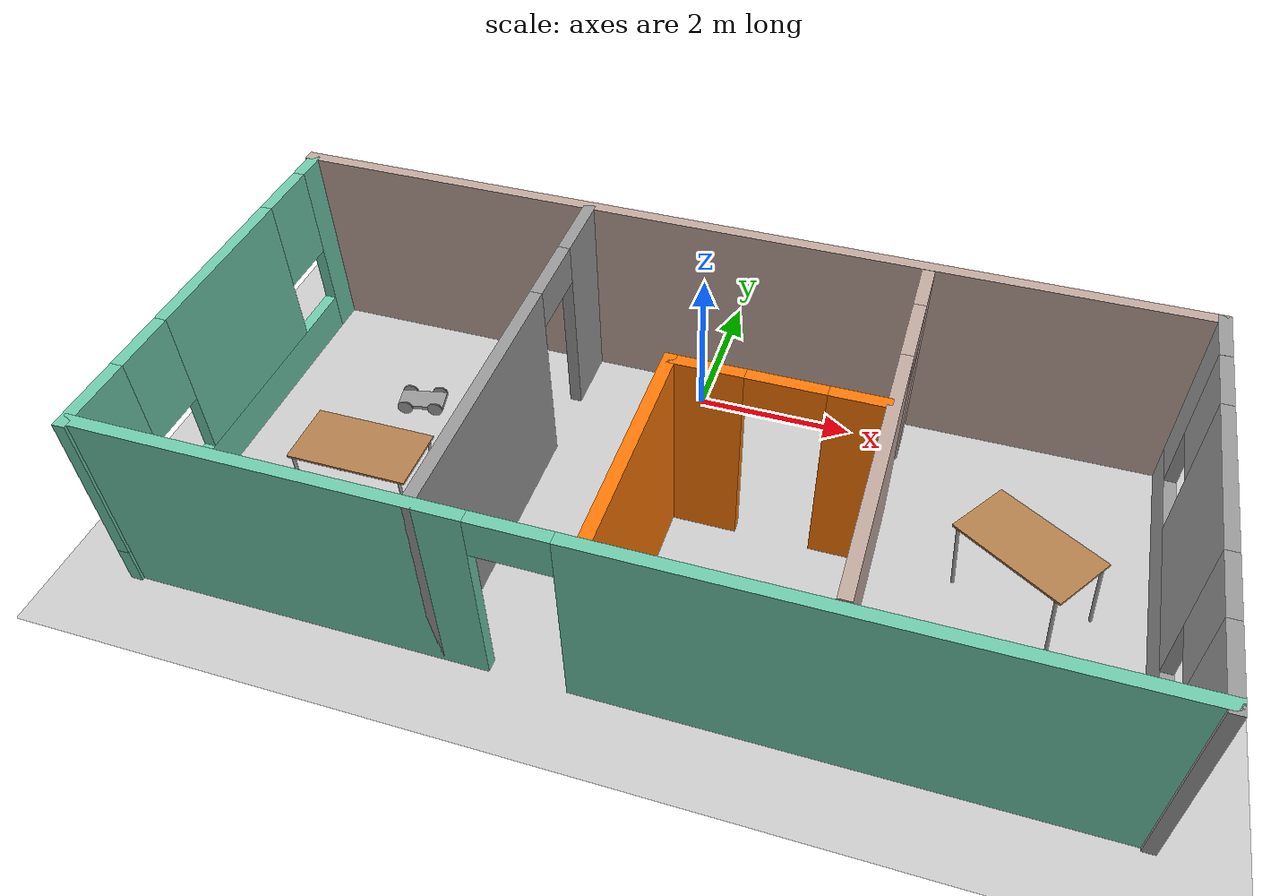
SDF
<sdf version="1.6">
 <world name="default">
  <plugin name="welcome" filename="libwelcome.so"/>
  <light name="sun" type="directional">
   <pose>0 0 10 0 -0 0</pose>
   <diffuse>0.8 0.8 0.8 1</diffuse>
   <specular>0.2 0.2 0.2 1</specular>
   <attenuation>
    <range>1000</range>
    <constant>0.9</constant>
    <linear>0.01</linear>
    <quadratic>0.001</quadratic>
   </attenuation>
   <direction>-0.5 0.1 -0.9</direction>
  </light>
  <model name="ground_plane">
   <static>1</static>
   <link name="link">
    <collision name="collision">
     <geometry><plane><normal>0 0 1</normal><size>100 100</size></plane></geometry>
     <surface><friction><ode><mu>100</mu><mu2>50</mu2></ode></friction></surface>
    </collision>
    <visual name="visual">
     <cast_shadows>0</cast_shadows>
     <geometry><plane><normal>0 0 1</normal><size>100 100</size></plane></geometry>
     <material>
      <script><uri>file://media/materials/scripts/gazebo.material</uri><name>Gazebo/Grey</name></script>
     </material>
    </visual>
   </link>
  </model>
  <gravity>0 0 -9.8</gravity>
  <magnetic_field>6e-06 2.3e-05 -4.2e-05</magnetic_field>
  <atmosphere type="adiabatic"/>
  <physics name="default_physics" default="0" type="ode">
   <max_step_size>0.001</max_step_size>
   <real_time_factor>1</real_time_factor>
   <real_time_update_rate>1000</real_time_update_rate>
  </physics>
  <scene><ambient>0.4 0.4 0.4 1</ambient><background>0.7 0.7 0.7 1</background><shadows>1</shadows></scene>
  <spherical_coordinates>
   <surface_model>EARTH_WGS84</surface_model>
   <latitude_deg>0</latitude_deg>
   <longitude_deg>0</longitude_deg>
   <elevation>0</elevation>
   <heading_deg>0</heading_deg>
  </spherical_coordinates>
  <model name="four_wheeled">
   <link name="link_0">
    <pose>0 0 0.1 0 -0 0</pose>
    <inertial>
     <mass>1</mass>
     <inertia>
      <ixx>0.166667</ixx>
      <ixy>0</ixy>
      <ixz>0</ixz>
      <iyy>0.166667</iyy>
      <iyz>0</iyz>
      <izz>0.166667</izz>
     </inertia>
    </inertial>
    <visual name="visual">
     <geometry><box><size>0.6 0.3 0.05</size></box></geometry>
     <material>
      <lighting>1</lighting>
      <script><uri>file://media/materials/scripts/gazebo.material</uri><name>Gazebo/Grey</name></script>
      <shader type="pixel"><normal_map>__default__</normal_map></shader>
      <ambient>0.3 0.3 0.3 1</ambient>
      <diffuse>0.7 0.7 0.7 1</diffuse>
      <specular>0.01 0.01 0.01 1</specular>
      <emissive>0 0 0 1</emissive>
     </material>
    </visual>
    <collision name="collision">
     <geometry><box><size>0.6 0.3 0.05</size></box></geometry>
     <surface>
      <friction>
       <ode><mu>1</mu><mu2>1</mu2><fdir1>0 0 0</fdir1><slip1>0</slip1><slip2>0</slip2></ode>
       <torsional>
        <coefficient>1</coefficient>
        <patch_radius>0</patch_radius>
        <surface_radius>0</surface_radius>
        <use_patch_radius>1</use_patch_radius>
        <ode><slip>0</slip></ode>
       </torsional>
      </friction>
      <bounce><restitution_coefficient>0</restitution_coefficient><threshold>1e+06</threshold></bounce>
      <contact>
       <collide_without_contact>0</collide_without_contact>
       <collide_without_contact_bitmask>1</collide_without_contact_bitmask>
       <collide_bitmask>1</collide_bitmask>
       <ode>
        <soft_cfm>0</soft_cfm>
        <soft_erp>0.2</soft_erp>
        <kp>1e+13</kp>
        <kd>1</kd>
        <max_vel>0.01</max_vel>
        <min_depth>0</min_depth>
       </ode>
       <bullet>
        <split_impulse>1</split_impulse>
        <split_impulse_penetration_threshold>-0.01</split_impulse_penetration_threshold>
        <soft_cfm>0</soft_cfm>
        <soft_erp>0.2</soft_erp>
        <kp>1e+13</kp>
        <kd>1</kd>
       </bullet>
      </contact>
     </surface>
    </collision>
   </link>
   <link name="link_1">
    <pose>0.2 0.16 0.1 1.5707 -0 0</pose>
    <inertial>
     <mass>1</mass>
     <inertia><ixx>0.145833</ixx><ixy>0</ixy><ixz>0</ixz><iyy>0.145833</iyy><iyz>0</iyz><izz>0.125</izz></inertia>
    </inertial>
    <visual name="visual">
     <geometry><cylinder><radius>0.1</radius><length>0.02</length></cylinder></geometry>
     <material>
      <lighting>1</lighting>
      <script><uri>file://media/materials/scripts/gazebo.material</uri><name>Gazebo/Grey</name></script>
      <shader type="pixel"><normal_map>__default__</normal_map></shader>
      <ambient>0.3 0.3 0.3 1</ambient>
      <diffuse>0.7 0.7 0.7 1</diffuse>
      <specular>0.01 0.01 0.01 1</specular>
      <emissive>0 0 0 1</emissive>
     </material>
    </visual>
    <collision name="collision">
     <geometry><cylinder><radius>0.01</radius><length>0.02</length></cylinder></geometry>
     <surface>
      <friction>
       <ode><mu>1</mu><mu2>1</mu2><fdir1>0 0 0</fdir1><slip1>0</slip1><slip2>0</slip2></ode>
       <torsional>
        <coefficient>1</coefficient>
        <patch_radius>0</patch_radius>
        <surface_radius>0</surface_radius>
        <use_patch_radius>1</use_patch_radius>
        <ode><slip>0</slip></ode>
       </torsional>
      </friction>
      <bounce><restitution_coefficient>0</restitution_coefficient><threshold>1e+06</threshold></bounce>
      <contact>
       <collide_without_contact>0</collide_without_contact>
       <collide_without_contact_bitmask>1</collide_without_contact_bitmask>
       <collide_bitmask>1</collide_bitmask>
       <ode>
        <soft_cfm>0</soft_cfm>
        <soft_erp>0.2</soft_erp>
        <kp>1e+13</kp>
        <kd>1</kd>
        <max_vel>0.01</max_vel>
        <min_depth>0</min_depth>
       </ode>
       <bullet>
        <split_impulse>1</split_impulse>
        <split_impulse_penetration_threshold>-0.01</split_impulse_penetration_threshold>
        <soft_cfm>0</soft_cfm>
        <soft_erp>0.2</soft_erp>
        <kp>1e+13</kp>
        <kd>1</kd>
       </bullet>
      </contact>
     </surface>
    </collision>
   </link>
   <link name="link_2">
    <pose>0.2 -0.16 0.1 1.5707 -0 0</pose>
    <inertial>
     <mass>1</mass>
     <inertia><ixx>0.145833</ixx><ixy>0</ixy><ixz>0</ixz><iyy>0.145833</iyy><iyz>0</iyz><izz>0.125</izz></inertia>
    </inertial>
    <visual name="visual">
     <geometry><cylinder><radius>0.1</radius><length>0.02</length></cylinder></geometry>
     <material>
      <lighting>1</lighting>
      <script><uri>file://media/materials/scripts/gazebo.material</uri><name>Gazebo/Grey</name></script>
      <shader type="pixel"><normal_map>__default__</normal_map></shader>
      <ambient>0.3 0.3 0.3 1</ambient>
      <diffuse>0.7 0.7 0.7 1</diffuse>
      <specular>0.01 0.01 0.01 1</specular>
      <emissive>0 0 0 1</emissive>
     </material>
    </visual>
    <collision name="collision">
     <geometry><cylinder><radius>0.1</radius><length>0.02</length></cylinder></geometry>
     <surface>
      <friction>
       <ode><mu>1</mu><mu2>1</mu2><fdir1>0 0 0</fdir1><slip1>0</slip1><slip2>0</slip2></ode>
       <torsional>
        <coefficient>1</coefficient>
        <patch_radius>0</patch_radius>
        <surface_radius>0</surface_radius>
        <use_patch_radius>1</use_patch_radius>
        <ode><slip>0</slip></ode>
       </torsional>
      </friction>
      <bounce><restitution_coefficient>0</restitution_coefficient><threshold>1e+06</threshold></bounce>
      <contact>
       <collide_without_contact>0</collide_without_contact>
       <collide_without_contact_bitmask>1</collide_without_contact_bitmask>
       <collide_bitmask>1</collide_bitmask>
       <ode>
        <soft_cfm>0</soft_cfm>
        <soft_erp>0.2</soft_erp>
        <kp>1e+13</kp>
        <kd>1</kd>
        <max_vel>0.01</max_vel>
        <min_depth>0</min_depth>
       </ode>
       <bullet>
        <split_impulse>1</split_impulse>
        <split_impulse_penetration_threshold>-0.01</split_impulse_penetration_threshold>
        <soft_cfm>0</soft_cfm>
        <soft_erp>0.2</soft_erp>
        <kp>1e+13</kp>
        <kd>1</kd>
       </bullet>
      </contact>
     </surface>
    </collision>
   </link>
   <link name="link_3">
    <pose>-0.2 0.16 0.1 1.5707 -0 0</pose>
    <inertial>
     <mass>1</mass>
     <inertia><ixx>0.145833</ixx><ixy>0</ixy><ixz>0</ixz><iyy>0.145833</iyy><iyz>0</iyz><izz>0.125</izz></inertia>
    </inertial>
    <visual name="visual">
     <geometry><cylinder><radius>0.1</radius><length>0.02</length></cylinder></geometry>
     <material>
      <lighting>1</lighting>
      <script><uri>file://media/materials/scripts/gazebo.material</uri><name>Gazebo/Grey</name></script>
      <shader type="pixel"><normal_map>__default__</normal_map></shader>
      <ambient>0.3 0.3 0.3 1</ambient>
      <diffuse>0.7 0.7 0.7 1</diffuse>
      <specular>0.01 0.01 0.01 1</specular>
      <emissive>0 0 0 1</emissive>
     </material>
    </visual>
    <collision name="collision">
     <geometry><cylinder><radius>0.1</radius><length>0.02</length></cylinder></geometry>
     <surface>
      <friction>
       <ode><mu>1</mu><mu2>1</mu2><fdir1>0 0 0</fdir1><slip1>0</slip1><slip2>0</slip2></ode>
       <torsional>
        <coefficient>1</coefficient>
        <patch_radius>0</patch_radius>
        <surface_radius>0</surface_radius>
        <use_patch_radius>1</use_patch_radius>
        <ode><slip>0</slip></ode>
       </torsional>
      </friction>
      <bounce><restitution_coefficient>0</restitution_coefficient><threshold>1e+06</threshold></bounce>
      <contact>
       <collide_without_contact>0</collide_without_contact>
       <collide_without_contact_bitmask>1</collide_without_contact_bitmask>
       <collide_bitmask>1</collide_bitmask>
       <ode>
        <soft_cfm>0</soft_cfm>
        <soft_erp>0.2</soft_erp>
        <kp>1e+13</kp>
        <kd>1</kd>
        <max_vel>0.01</max_vel>
        <min_depth>0</min_depth>
       </ode>
       <bullet>
        <split_impulse>1</split_impulse>
        <split_impulse_penetration_threshold>-0.01</split_impulse_penetration_threshold>
        <soft_cfm>0</soft_cfm>
        <soft_erp>0.2</soft_erp>
        <kp>1e+13</kp>
        <kd>1</kd>
       </bullet>
      </contact>
     </surface>
    </collision>
   </link>
   <link name="link_4">
    <pose>-0.2 -0.16 0.1 1.5707 -0 0</pose>
    <inertial>
     <mass>1</mass>
     <inertia><ixx>0.145833</ixx><ixy>0</ixy><ixz>0</ixz><iyy>0.145833</iyy><iyz>0</iyz><izz>0.125</izz></inertia>
    </inertial>
    <visual name="visual">
     <geometry><cylinder><radius>0.1</radius><length>0.02</length></cylinder></geometry>
     <material>
      <lighting>1</lighting>
      <script><uri>file://media/materials/scripts/gazebo.material</uri><name>Gazebo/Grey</name></script>
      <shader type="pixel"><normal_map>__default__</normal_map></shader>
      <ambient>0.3 0.3 0.3 1</ambient>
      <diffuse>0.7 0.7 0.7 1</diffuse>
      <specular>0.01 0.01 0.01 1</specular>
      <emissive>0 0 0 1</emissive>
     </material>
    </visual>
    <collision name="collision">
     <geometry><cylinder><radius>0.1</radius><length>0.02</length></cylinder></geometry>
     <surface>
      <friction>
       <ode><mu>1</mu><mu2>1</mu2><fdir1>0 0 0</fdir1><slip1>0</slip1><slip2>0</slip2></ode>
       <torsional>
        <coefficient>1</coefficient>
        <patch_radius>0</patch_radius>
        <surface_radius>0</surface_radius>
        <use_patch_radius>1</use_patch_radius>
        <ode><slip>0</slip></ode>
       </torsional>
      </friction>
      <bounce><restitution_coefficient>0</restitution_coefficient><threshold>1e+06</threshold></bounce>
      <contact>
       <collide_without_contact>0</collide_without_contact>
       <collide_without_contact_bitmask>1</collide_without_contact_bitmask>
       <collide_bitmask>1</collide_bitmask>
       <ode>
        <soft_cfm>0</soft_cfm>
        <soft_erp>0.2</soft_erp>
        <kp>1e+13</kp>
        <kd>1</kd>
        <max_vel>0.01</max_vel>
        <min_depth>0</min_depth>
       </ode>
       <bullet>
        <split_impulse>1</split_impulse>
        <split_impulse_penetration_threshold>-0.01</split_impulse_penetration_threshold>
        <soft_cfm>0</soft_cfm>
        <soft_erp>0.2</soft_erp>
        <kp>1e+13</kp>
        <kd>1</kd>
       </bullet>
      </contact>
     </surface>
    </collision>
   </link>
   <joint name="link_0_JOINT_2" type="revolute">
    <parent>link_0</parent>
    <child>link_3</child>
    <axis>
     <xyz>0 0 1</xyz>
     <use_parent_model_frame>0</use_parent_model_frame>
     <limit>
      <lower>-1.79769e+308</lower>
      <upper>1.79769e+308</upper>
      <effort>-1</effort>
      <velocity>-1</velocity>
     </limit>
     <dynamics>
      <spring_reference>0</spring_reference>
      <spring_stiffness>0</spring_stiffness>
      <damping>0</damping>
     </dynamics>
    </axis>
    <physics>
     <ode><limit><cfm>0</cfm><erp>0.2</erp></limit><suspension><cfm>0</cfm><erp>0.2</erp></suspension></ode>
    </physics>
   </joint>
   <joint name="link_0_JOINT_3" type="revolute">
    <parent>link_0</parent>
    <child>link_2</child>
    <axis>
     <xyz>0 0 1</xyz>
     <use_parent_model_frame>0</use_parent_model_frame>
     <limit>
      <lower>-1.79769e+308</lower>
      <upper>1.79769e+308</upper>
      <effort>-1</effort>
      <velocity>-1</velocity>
     </limit>
     <dynamics>
      <spring_reference>0</spring_reference>
      <spring_stiffness>0</spring_stiffness>
      <damping>0</damping>
     </dynamics>
    </axis>
    <physics>
     <ode><limit><cfm>0</cfm><erp>0.2</erp></limit><suspension><cfm>0</cfm><erp>0.2</erp></suspension></ode>
    </physics>
   </joint>
   <joint name="link_0_JOINT_4" type="revolute">
    <parent>link_0</parent>
    <child>link_1</child>
    <axis>
     <xyz>0 0 1</xyz>
     <use_parent_model_frame>0</use_parent_model_frame>
     <limit>
      <lower>-1.79769e+308</lower>
      <upper>1.79769e+308</upper>
      <effort>-1</effort>
      <velocity>-1</velocity>
     </limit>
     <dynamics>
      <spring_reference>0</spring_reference>
      <spring_stiffness>0</spring_stiffness>
      <damping>0</damping>
     </dynamics>
    </axis>
    <physics>
     <ode><limit><cfm>0</cfm><erp>0.2</erp></limit><suspension><cfm>0</cfm><erp>0.2</erp></suspension></ode>
    </physics>
   </joint>
   <joint name="link_0_JOINT_1" type="revolute">
    <parent>link_0</parent>
    <child>link_4</child>
    <axis>
     <xyz>0 0 1</xyz>
     <use_parent_model_frame>0</use_parent_model_frame>
     <limit>
      <lower>-1.79769e+308</lower>
      <upper>1.79769e+308</upper>
      <effort>-1</effort>
      <velocity>-1</velocity>
     </limit>
     <dynamics>
      <spring_reference>0</spring_reference>
      <spring_stiffness>0</spring_stiffness>
      <damping>0</damping>
      <friction>0</friction>
     </dynamics>
    </axis>
    <physics>
     <ode><limit><cfm>0</cfm><erp>0.2</erp></limit><suspension><cfm>0</cfm><erp>0.2</erp></suspension></ode>
    </physics>
   </joint>
   <static>0</static>
   <pose>-0.005123 -0.012088 3e-06 -6.9e-05 6.2e-05 0.216643</pose>
  </model>
  <model name="flat">
   <pose>0.202888 -2.15418 0 0 -0 0</pose>
   <link name="Wall_0">
    <pose>0.01749 -2.56749 0 0 -0 0</pose>
    <visual name="Wall_0_Visual_0">
     <pose>-3.4975 0 1.25 0 -0 0</pose>
     <geometry><box><size>4.505 0.15 2.5</size></box></geometry>
     <material>
      <script><uri>file://media/materials/scripts/gazebo.material</uri><name>Gazebo/Grey</name></script>
      <ambient>0.435294 0.796078 0.67451 1</ambient>
     </material>
     <meta><layer>0</layer></meta>
    </visual>
    <collision name="Wall_0_Collision_0">
     <geometry><box><size>4.505 0.15 2.5</size></box></geometry>
     <pose>-3.4975 0 1.25 0 -0 0</pose>
    </collision>
    <visual name="Wall_0_Visual_1">
     <pose>2.7025 0 1.25 0 -0 0</pose>
     <geometry><box><size>6.095 0.15 2.5</size></box></geometry>
     <material>
      <script><uri>file://media/materials/scripts/gazebo.material</uri><name>Gazebo/Grey</name></script>
      <ambient>0.435294 0.796078 0.67451 1</ambient>
     </material>
     <meta><layer>0</layer></meta>
    </visual>
    <collision name="Wall_0_Collision_1">
     <geometry><box><size>6.095 0.15 2.5</size></box></geometry>
     <pose>2.7025 0 1.25 0 -0 0</pose>
    </collision>
    <visual name="Wall_0_Visual_2">
     <pose>-0.795 0 2.25 0 -0 0</pose>
     <geometry><box><size>0.9 0.15 0.5</size></box></geometry>
     <material>
      <script><uri>file://media/materials/scripts/gazebo.material</uri><name>Gazebo/Grey</name></script>
      <ambient>0.435294 0.796078 0.67451 1</ambient>
     </material>
     <meta><layer>0</layer></meta>
    </visual>
    <collision name="Wall_0_Collision_2">
     <geometry><box><size>0.9 0.15 0.5</size></box></geometry>
     <pose>-0.795 0 2.25 0 -0 0</pose>
    </collision>
   </link>
   <link name="Wall_1">
    <pose>5.69249 0 0 0 -0 1.5708</pose>
    <visual name="Wall_1_Visual_0">
     <pose>-2.1766 0 1.25 0 -0 0</pose>
     <geometry><box><size>1.00175 0.15 2.5</size></box></geometry>
     <material>
      <script><uri>file://media/materials/scripts/gazebo.material</uri><name>Gazebo/Grey</name></script>
      <ambient>1 1 1 1</ambient>
     </material>
     <meta><layer>0</layer></meta>
    </visual>
    <collision name="Wall_1_Collision_0">
     <geometry><box><size>1.00175 0.15 2.5</size></box></geometry>
     <pose>-2.1766 0 1.25 0 -0 0</pose>
    </collision>
    <visual name="Wall_1_Visual_1">
     <pose>0.500875 0 0.25 0 -0 0</pose>
     <geometry><box><size>4.35319 0.15 0.5</size></box></geometry>
     <material>
      <script><uri>file://media/materials/scripts/gazebo.material</uri><name>Gazebo/Grey</name></script>
      <ambient>1 1 1 1</ambient>
     </material>
     <meta><layer>0</layer></meta>
    </visual>
    <collision name="Wall_1_Collision_1">
     <geometry><box><size>4.35319 0.15 0.5</size></box></geometry>
     <pose>0.500875 0 0.25 0 -0 0</pose>
    </collision>
    <visual name="Wall_1_Visual_2">
     <pose>0.142881 0 1.5 0 -0 0</pose>
     <geometry><box><size>2.0372 0.15 2</size></box></geometry>
     <material>
      <script><uri>file://media/materials/scripts/gazebo.material</uri><name>Gazebo/Grey</name></script>
      <ambient>1 1 1 1</ambient>
     </material>
     <meta><layer>0</layer></meta>
    </visual>
    <collision name="Wall_1_Collision_2">
     <geometry><box><size>2.0372 0.15 2</size></box></geometry>
     <pose>0.142881 0 1.5 0 -0 0</pose>
    </collision>
    <visual name="Wall_1_Visual_3">
     <pose>2.31948 0 1.5 0 -0 0</pose>
     <geometry><box><size>0.715988 0.15 2</size></box></geometry>
     <material>
      <script><uri>file://media/materials/scripts/gazebo.material</uri><name>Gazebo/Grey</name></script>
      <ambient>1 1 1 1</ambient>
     </material>
     <meta><layer>0</layer></meta>
    </visual>
    <collision name="Wall_1_Collision_3">
     <geometry><box><size>0.715988 0.15 2</size></box></geometry>
     <pose>2.31948 0 1.5 0 -0 0</pose>
    </collision>
    <visual name="Wall_1_Visual_4">
     <pose>-1.27572 0 1.9 0 -0 0</pose>
     <geometry><box><size>0.8 0.15 1.2</size></box></geometry>
     <material>
      <script><uri>file://media/materials/scripts/gazebo.material</uri><name>Gazebo/Grey</name></script>
      <ambient>1 1 1 1</ambient>
     </material>
     <meta><layer>0</layer></meta>
    </visual>
    <collision name="Wall_1_Collision_4">
     <geometry><box><size>0.8 0.15 1.2</size></box></geometry>
     <pose>-1.27572 0 1.9 0 -0 0</pose>
    </collision>
    <visual name="Wall_1_Visual_5">
     <pose>1.56148 0 1.9 0 -0 0</pose>
     <geometry><box><size>0.8 0.15 1.2</size></box></geometry>
     <material>
      <script><uri>file://media/materials/scripts/gazebo.material</uri><name>Gazebo/Grey</name></script>
      <ambient>1 1 1 1</ambient>
     </material>
     <meta><layer>0</layer></meta>
    </visual>
    <collision name="Wall_1_Collision_5">
     <geometry><box><size>0.8 0.15 1.2</size></box></geometry>
     <pose>1.56148 0 1.9 0 -0 0</pose>
    </collision>
   </link>
   <link name="Wall_12">
    <collision name="Wall_12_Collision">
     <geometry><box><size>2.75 0.15 2.5</size></box></geometry>
     <pose>0 0 1.25 0 -0 0</pose>
    </collision>
    <visual name="Wall_12_Visual">
     <pose>0 0 1.25 0 -0 0</pose>
     <geometry><box><size>2.75 0.15 2.5</size></box></geometry>
     <material>
      <script><uri>file://media/materials/scripts/gazebo.material</uri><name>Gazebo/Grey</name></script>
      <ambient>0.996078 0.47451 0.0196078 1</ambient>
     </material>
     <meta><layer>0</layer></meta>
    </visual>
    <pose>-0.037888 -1.14582 0 0 0 -1.5708</pose>
   </link>
   <link name="Wall_14">
    <pose>1.13711 0.154179 0 0 -0 0</pose>
    <visual name="Wall_14_Visual_0">
     <pose>-0.788452 0 1.25 0 -0 0</pose>
     <geometry><box><size>0.923095 0.15 2.5</size></box></geometry>
     <material>
      <script><uri>file://media/materials/scripts/gazebo.material</uri><name>Gazebo/Grey</name></script>
      <ambient>0.996078 0.47451 0.0196078 1</ambient>
     </material>
     <meta><layer>0</layer></meta>
    </visual>
    <collision name="Wall_14_Collision_0">
     <geometry><box><size>0.923095 0.15 2.5</size></box></geometry>
     <pose>-0.788452 0 1.25 0 -0 0</pose>
    </collision>
    <visual name="Wall_14_Visual_1">
     <pose>0.911548 0 1.25 0 -0 0</pose>
     <geometry><box><size>0.676905 0.15 2.5</size></box></geometry>
     <material>
      <script><uri>file://media/materials/scripts/gazebo.material</uri><name>Gazebo/Grey</name></script>
      <ambient>0.996078 0.47451 0.0196078 1</ambient>
     </material>
     <meta><layer>0</layer></meta>
    </visual>
    <collision name="Wall_14_Collision_1">
     <geometry><box><size>0.676905 0.15 2.5</size></box></geometry>
     <pose>0.911548 0 1.25 0 -0 0</pose>
    </collision>
    <visual name="Wall_14_Visual_2">
     <pose>0.123095 0 2.25 0 -0 0</pose>
     <geometry><box><size>0.9 0.15 0.5</size></box></geometry>
     <material>
      <script><uri>file://media/materials/scripts/gazebo.material</uri><name>Gazebo/Grey</name></script>
      <ambient>0.996078 0.47451 0.0196078 1</ambient>
     </material>
     <meta><layer>0</layer></meta>
    </visual>
    <collision name="Wall_14_Collision_2">
     <geometry><box><size>0.9 0.15 0.5</size></box></geometry>
     <pose>0.123095 0 2.25 0 -0 0</pose>
    </collision>
   </link>
   <link name="Wall_3">
    <collision name="Wall_3_Collision">
     <geometry><box><size>11.5 0.15 2.5</size></box></geometry>
     <pose>0 0 1.25 0 -0 0</pose>
    </collision>
    <visual name="Wall_3_Visual">
     <pose>0 0 1.25 0 -0 0</pose>
     <geometry><box><size>11.5 0.15 2.5</size></box></geometry>
     <material>
      <script><uri>file://media/materials/scripts/gazebo.material</uri><name>Gazebo/Grey</name></script>
      <ambient>0.760784 0.662745 0.627451 1</ambient>
     </material>
     <meta><layer>0</layer></meta>
    </visual>
    <pose>-0.01749 2.60247 0 0 -0 3.14159</pose>
   </link>
   <link name="Wall_4">
    <pose>-5.65751 0 0 0 0 -1.5708</pose>
    <visual name="Wall_4_Visual_0">
     <pose>-2.42153 0 1.25 0 -0 0</pose>
     <geometry><box><size>0.511873 0.15 2.5</size></box></geometry>
     <material>
      <script><uri>file://media/materials/scripts/gazebo.material</uri><name>Gazebo/Grey</name></script>
      <ambient>0.435294 0.796078 0.67451 1</ambient>
     </material>
     <meta><layer>0</layer></meta>
    </visual>
    <collision name="Wall_4_Collision_0">
     <geometry><box><size>0.511873 0.15 2.5</size></box></geometry>
     <pose>-2.42153 0 1.25 0 -0 0</pose>
    </collision>
    <visual name="Wall_4_Visual_1">
     <pose>0.255936 0 0.25 0 -0 0</pose>
     <geometry><box><size>4.84307 0.15 0.5</size></box></geometry>
     <material>
      <script><uri>file://media/materials/scripts/gazebo.material</uri><name>Gazebo/Grey</name></script>
      <ambient>0.435294 0.796078 0.67451 1</ambient>
     </material>
     <meta><layer>0</layer></meta>
    </visual>
    <collision name="Wall_4_Collision_1">
     <geometry><box><size>4.84307 0.15 0.5</size></box></geometry>
     <pose>0.255936 0 0.25 0 -0 0</pose>
    </collision>
    <visual name="Wall_4_Visual_2">
     <pose>-0.234732 0 1.5 0 -0 0</pose>
     <geometry><box><size>2.26173 0.15 2</size></box></geometry>
     <material>
      <script><uri>file://media/materials/scripts/gazebo.material</uri><name>Gazebo/Grey</name></script>
      <ambient>0.435294 0.796078 0.67451 1</ambient>
     </material>
     <meta><layer>0</layer></meta>
    </visual>
    <collision name="Wall_4_Collision_2">
     <geometry><box><size>2.26173 0.15 2</size></box></geometry>
     <pose>-0.234732 0 1.5 0 -0 0</pose>
    </collision>
    <visual name="Wall_4_Visual_3">
     <pose>2.1868 0 1.5 0 -0 0</pose>
     <geometry><box><size>0.981338 0.15 2</size></box></geometry>
     <material>
      <script><uri>file://media/materials/scripts/gazebo.material</uri><name>Gazebo/Grey</name></script>
      <ambient>0.435294 0.796078 0.67451 1</ambient>
     </material>
     <meta><layer>0</layer></meta>
    </visual>
    <collision name="Wall_4_Collision_3">
     <geometry><box><size>0.981338 0.15 2</size></box></geometry>
     <pose>2.1868 0 1.5 0 -0 0</pose>
    </collision>
    <visual name="Wall_4_Visual_4">
     <pose>-1.7656 0 1.9 0 -0 0</pose>
     <geometry><box><size>0.8 0.15 1.2</size></box></geometry>
     <material>
      <script><uri>file://media/materials/scripts/gazebo.material</uri><name>Gazebo/Grey</name></script>
      <ambient>0.435294 0.796078 0.67451 1</ambient>
     </material>
     <meta><layer>0</layer></meta>
    </visual>
    <collision name="Wall_4_Collision_4">
     <geometry><box><size>0.8 0.15 1.2</size></box></geometry>
     <pose>-1.7656 0 1.9 0 -0 0</pose>
    </collision>
    <visual name="Wall_4_Visual_5">
     <pose>1.29613 0 1.9 0 -0 0</pose>
     <geometry><box><size>0.8 0.15 1.2</size></box></geometry>
     <material>
      <script><uri>file://media/materials/scripts/gazebo.material</uri><name>Gazebo/Grey</name></script>
      <ambient>0.435294 0.796078 0.67451 1</ambient>
     </material>
     <meta><layer>0</layer></meta>
    </visual>
    <collision name="Wall_4_Collision_5">
     <geometry><box><size>0.8 0.15 1.2</size></box></geometry>
     <pose>1.29613 0 1.9 0 -0 0</pose>
    </collision>
   </link>
   <link name="Wall_6">
    <pose>-1.82739 -0.01749 0 0 0 -1.5708</pose>
    <visual name="Wall_6_Visual_0">
     <pose>-2.1625 0 1.25 0 -0 0</pose>
     <geometry><box><size>0.925 0.15 2.5</size></box></geometry>
     <material>
      <script><uri>file://media/materials/scripts/gazebo.material</uri><name>Gazebo/Grey</name></script>
      <ambient>1 1 1 1</ambient>
     </material>
     <meta><layer>0</layer></meta>
    </visual>
    <collision name="Wall_6_Collision_0">
     <geometry><box><size>0.925 0.15 2.5</size></box></geometry>
     <pose>-2.1625 0 1.25 0 -0 0</pose>
    </collision>
    <visual name="Wall_6_Visual_1">
     <pose>0.9125 0 1.25 0 -0 0</pose>
     <geometry><box><size>3.425 0.15 2.5</size></box></geometry>
     <material>
      <script><uri>file://media/materials/scripts/gazebo.material</uri><name>Gazebo/Grey</name></script>
      <ambient>1 1 1 1</ambient>
     </material>
     <meta><layer>0</layer></meta>
    </visual>
    <collision name="Wall_6_Collision_1">
     <geometry><box><size>3.425 0.15 2.5</size></box></geometry>
     <pose>0.9125 0 1.25 0 -0 0</pose>
    </collision>
    <visual name="Wall_6_Visual_2">
     <pose>-1.25 0 2.25 0 -0 0</pose>
     <geometry><box><size>0.9 0.15 0.5</size></box></geometry>
     <material>
      <script><uri>file://media/materials/scripts/gazebo.material</uri><name>Gazebo/Grey</name></script>
      <ambient>1 1 1 1</ambient>
     </material>
     <meta><layer>0</layer></meta>
    </visual>
    <collision name="Wall_6_Collision_2">
     <geometry><box><size>0.9 0.15 0.5</size></box></geometry>
     <pose>-1.25 0 2.25 0 -0 0</pose>
    </collision>
   </link>
   <link name="Wall_9">
    <pose>2.40233 0.02249 0 0 0 -1.5708</pose>
    <visual name="Wall_9_Visual_0">
     <pose>-2.1675 0 1.25 0 -0 0</pose>
     <geometry><box><size>0.665 0.15 2.5</size></box></geometry>
     <material>
      <script><uri>file://media/materials/scripts/gazebo.material</uri><name>Gazebo/Grey</name></script>
      <ambient>0.760784 0.662745 0.627451 1</ambient>
     </material>
     <meta><layer>0</layer></meta>
    </visual>
    <collision name="Wall_9_Collision_0">
     <geometry><box><size>0.665 0.15 2.5</size></box></geometry>
     <pose>-2.1675 0 1.25 0 -0 0</pose>
    </collision>
    <visual name="Wall_9_Visual_1">
     <pose>0.7825 0 1.25 0 -0 0</pose>
     <geometry><box><size>3.435 0.15 2.5</size></box></geometry>
     <material>
      <script><uri>file://media/materials/scripts/gazebo.material</uri><name>Gazebo/Grey</name></script>
      <ambient>0.760784 0.662745 0.627451 1</ambient>
     </material>
     <meta><layer>0</layer></meta>
    </visual>
    <collision name="Wall_9_Collision_1">
     <geometry><box><size>3.435 0.15 2.5</size></box></geometry>
     <pose>0.7825 0 1.25 0 -0 0</pose>
    </collision>
    <visual name="Wall_9_Visual_2">
     <pose>-1.385 0 2.25 0 -0 0</pose>
     <geometry><box><size>0.9 0.15 0.5</size></box></geometry>
     <material>
      <script><uri>file://media/materials/scripts/gazebo.material</uri><name>Gazebo/Grey</name></script>
      <ambient>0.760784 0.662745 0.627451 1</ambient>
     </material>
     <meta><layer>0</layer></meta>
    </visual>
    <collision name="Wall_9_Collision_2">
     <geometry><box><size>0.9 0.15 0.5</size></box></geometry>
     <pose>-1.385 0 2.25 0 -0 0</pose>
    </collision>
   </link>
   <static>1</static>
  </model>
  <model name="four_wheeled_0">
   <link name="link_0">
    <pose>0 0 0.1 0 -0 0</pose>
    <inertial>
     <mass>1</mass>
     <inertia>
      <ixx>0.166667</ixx>
      <ixy>0</ixy>
      <ixz>0</ixz>
      <iyy>0.166667</iyy>
      <iyz>0</iyz>
      <izz>0.166667</izz>
     </inertia>
    </inertial>
    <visual name="visual">
     <geometry><box><size>0.6 0.3 0.05</size></box></geometry>
     <material>
      <lighting>1</lighting>
      <script><uri>file://media/materials/scripts/gazebo.material</uri><name>Gazebo/Grey</name></script>
      <shader type="pixel"><normal_map>__default__</normal_map></shader>
      <ambient>0.3 0.3 0.3 1</ambient>
      <diffuse>0.7 0.7 0.7 1</diffuse>
      <specular>0.01 0.01 0.01 1</specular>
      <emissive>0 0 0 1</emissive>
     </material>
    </visual>
    <collision name="collision">
     <geometry><box><size>0.6 0.3 0.05</size></box></geometry>
     <surface>
      <friction>
       <ode><mu>1</mu><mu2>1</mu2><fdir1>0 0 0</fdir1><slip1>0</slip1><slip2>0</slip2></ode>
       <torsional>
        <coefficient>1</coefficient>
        <patch_radius>0</patch_radius>
        <surface_radius>0</surface_radius>
        <use_patch_radius>1</use_patch_radius>
        <ode><slip>0</slip></ode>
       </torsional>
      </friction>
      <bounce><restitution_coefficient>0</restitution_coefficient><threshold>1e+06</threshold></bounce>
      <contact>
       <collide_without_contact>0</collide_without_contact>
       <collide_without_contact_bitmask>1</collide_without_contact_bitmask>
       <collide_bitmask>1</collide_bitmask>
       <ode>
        <soft_cfm>0</soft_cfm>
        <soft_erp>0.2</soft_erp>
        <kp>1e+13</kp>
        <kd>1</kd>
        <max_vel>0.01</max_vel>
        <min_depth>0</min_depth>
       </ode>
       <bullet>
        <split_impulse>1</split_impulse>
        <split_impulse_penetration_threshold>-0.01</split_impulse_penetration_threshold>
        <soft_cfm>0</soft_cfm>
        <soft_erp>0.2</soft_erp>
        <kp>1e+13</kp>
        <kd>1</kd>
       </bullet>
      </contact>
     </surface>
    </collision>
   </link>
   <link name="link_1">
    <pose>0.2 0.16 0.1 1.5707 -0 0</pose>
    <inertial>
     <mass>1</mass>
     <inertia><ixx>0.145833</ixx><ixy>0</ixy><ixz>0</ixz><iyy>0.145833</iyy><iyz>0</iyz><izz>0.125</izz></inertia>
    </inertial>
    <visual name="visual">
     <geometry><cylinder><radius>0.1</radius><length>0.02</length></cylinder></geometry>
     <material>
      <lighting>1</lighting>
      <script><uri>file://media/materials/scripts/gazebo.material</uri><name>Gazebo/Grey</name></script>
      <shader type="pixel"><normal_map>__default__</normal_map></shader>
      <ambient>0.3 0.3 0.3 1</ambient>
      <diffuse>0.7 0.7 0.7 1</diffuse>
      <specular>0.01 0.01 0.01 1</specular>
      <emissive>0 0 0 1</emissive>
     </material>
    </visual>
    <collision name="collision">
     <geometry><cylinder><radius>0.01</radius><length>0.02</length></cylinder></geometry>
     <surface>
      <friction>
       <ode><mu>1</mu><mu2>1</mu2><fdir1>0 0 0</fdir1><slip1>0</slip1><slip2>0</slip2></ode>
       <torsional>
        <coefficient>1</coefficient>
        <patch_radius>0</patch_radius>
        <surface_radius>0</surface_radius>
        <use_patch_radius>1</use_patch_radius>
        <ode><slip>0</slip></ode>
       </torsional>
      </friction>
      <bounce><restitution_coefficient>0</restitution_coefficient><threshold>1e+06</threshold></bounce>
      <contact>
       <collide_without_contact>0</collide_without_contact>
       <collide_without_contact_bitmask>1</collide_without_contact_bitmask>
       <collide_bitmask>1</collide_bitmask>
       <ode>
        <soft_cfm>0</soft_cfm>
        <soft_erp>0.2</soft_erp>
        <kp>1e+13</kp>
        <kd>1</kd>
        <max_vel>0.01</max_vel>
        <min_depth>0</min_depth>
       </ode>
       <bullet>
        <split_impulse>1</split_impulse>
        <split_impulse_penetration_threshold>-0.01</split_impulse_penetration_threshold>
        <soft_cfm>0</soft_cfm>
        <soft_erp>0.2</soft_erp>
        <kp>1e+13</kp>
        <kd>1</kd>
       </bullet>
      </contact>
     </surface>
    </collision>
   </link>
   <link name="link_2">
    <pose>0.2 -0.16 0.1 1.5707 -0 0</pose>
    <inertial>
     <mass>1</mass>
     <inertia><ixx>0.145833</ixx><ixy>0</ixy><ixz>0</ixz><iyy>0.145833</iyy><iyz>0</iyz><izz>0.125</izz></inertia>
    </inertial>
    <visual name="visual">
     <geometry><cylinder><radius>0.1</radius><length>0.02</length></cylinder></geometry>
     <material>
      <lighting>1</lighting>
      <script><uri>file://media/materials/scripts/gazebo.material</uri><name>Gazebo/Grey</name></script>
      <shader type="pixel"><normal_map>__default__</normal_map></shader>
      <ambient>0.3 0.3 0.3 1</ambient>
      <diffuse>0.7 0.7 0.7 1</diffuse>
      <specular>0.01 0.01 0.01 1</specular>
      <emissive>0 0 0 1</emissive>
     </material>
    </visual>
    <collision name="collision">
     <geometry><cylinder><radius>0.1</radius><length>0.02</length></cylinder></geometry>
     <surface>
      <friction>
       <ode><mu>1</mu><mu2>1</mu2><fdir1>0 0 0</fdir1><slip1>0</slip1><slip2>0</slip2></ode>
       <torsional>
        <coefficient>1</coefficient>
        <patch_radius>0</patch_radius>
        <surface_radius>0</surface_radius>
        <use_patch_radius>1</use_patch_radius>
        <ode><slip>0</slip></ode>
       </torsional>
      </friction>
      <bounce><restitution_coefficient>0</restitution_coefficient><threshold>1e+06</threshold></bounce>
      <contact>
       <collide_without_contact>0</collide_without_contact>
       <collide_without_contact_bitmask>1</collide_without_contact_bitmask>
       <collide_bitmask>1</collide_bitmask>
       <ode>
        <soft_cfm>0</soft_cfm>
        <soft_erp>0.2</soft_erp>
        <kp>1e+13</kp>
        <kd>1</kd>
        <max_vel>0.01</max_vel>
        <min_depth>0</min_depth>
       </ode>
       <bullet>
        <split_impulse>1</split_impulse>
        <split_impulse_penetration_threshold>-0.01</split_impulse_penetration_threshold>
        <soft_cfm>0</soft_cfm>
        <soft_erp>0.2</soft_erp>
        <kp>1e+13</kp>
        <kd>1</kd>
       </bullet>
      </contact>
     </surface>
    </collision>
   </link>
   <link name="link_3">
    <pose>-0.2 0.16 0.1 1.5707 -0 0</pose>
    <inertial>
     <mass>1</mass>
     <inertia><ixx>0.145833</ixx><ixy>0</ixy><ixz>0</ixz><iyy>0.145833</iyy><iyz>0</iyz><izz>0.125</izz></inertia>
    </inertial>
    <visual name="visual">
     <geometry><cylinder><radius>0.1</radius><length>0.02</length></cylinder></geometry>
     <material>
      <lighting>1</lighting>
      <script><uri>file://media/materials/scripts/gazebo.material</uri><name>Gazebo/Grey</name></script>
      <shader type="pixel"><normal_map>__default__</normal_map></shader>
      <ambient>0.3 0.3 0.3 1</ambient>
      <diffuse>0.7 0.7 0.7 1</diffuse>
      <specular>0.01 0.01 0.01 1</specular>
      <emissive>0 0 0 1</emissive>
     </material>
    </visual>
    <collision name="collision">
     <geometry><cylinder><radius>0.1</radius><length>0.02</length></cylinder></geometry>
     <surface>
      <friction>
       <ode><mu>1</mu><mu2>1</mu2><fdir1>0 0 0</fdir1><slip1>0</slip1><slip2>0</slip2></ode>
       <torsional>
        <coefficient>1</coefficient>
        <patch_radius>0</patch_radius>
        <surface_radius>0</surface_radius>
        <use_patch_radius>1</use_patch_radius>
        <ode><slip>0</slip></ode>
       </torsional>
      </friction>
      <bounce><restitution_coefficient>0</restitution_coefficient><threshold>1e+06</threshold></bounce>
      <contact>
       <collide_without_contact>0</collide_without_contact>
       <collide_without_contact_bitmask>1</collide_without_contact_bitmask>
       <collide_bitmask>1</collide_bitmask>
       <ode>
        <soft_cfm>0</soft_cfm>
        <soft_erp>0.2</soft_erp>
        <kp>1e+13</kp>
        <kd>1</kd>
        <max_vel>0.01</max_vel>
        <min_depth>0</min_depth>
       </ode>
       <bullet>
        <split_impulse>1</split_impulse>
        <split_impulse_penetration_threshold>-0.01</split_impulse_penetration_threshold>
        <soft_cfm>0</soft_cfm>
        <soft_erp>0.2</soft_erp>
        <kp>1e+13</kp>
        <kd>1</kd>
       </bullet>
      </contact>
     </surface>
    </collision>
   </link>
   <link name="link_4">
    <pose>-0.2 -0.16 0.1 1.5707 -0 0</pose>
    <inertial>
     <mass>1</mass>
     <inertia><ixx>0.145833</ixx><ixy>0</ixy><ixz>0</ixz><iyy>0.145833</iyy><iyz>0</iyz><izz>0.125</izz></inertia>
    </inertial>
    <visual name="visual">
     <geometry><cylinder><radius>0.1</radius><length>0.02</length></cylinder></geometry>
     <material>
      <lighting>1</lighting>
      <script><uri>file://media/materials/scripts/gazebo.material</uri><name>Gazebo/Grey</name></script>
      <shader type="pixel"><normal_map>__default__</normal_map></shader>
      <ambient>0.3 0.3 0.3 1</ambient>
      <diffuse>0.7 0.7 0.7 1</diffuse>
      <specular>0.01 0.01 0.01 1</specular>
      <emissive>0 0 0 1</emissive>
     </material>
    </visual>
    <collision name="collision">
     <geometry><cylinder><radius>0.1</radius><length>0.02</length></cylinder></geometry>
     <surface>
      <friction>
       <ode><mu>1</mu><mu2>1</mu2><fdir1>0 0 0</fdir1><slip1>0</slip1><slip2>0</slip2></ode>
       <torsional>
        <coefficient>1</coefficient>
        <patch_radius>0</patch_radius>
        <surface_radius>0</surface_radius>
        <use_patch_radius>1</use_patch_radius>
        <ode><slip>0</slip></ode>
       </torsional>
      </friction>
      <bounce><restitution_coefficient>0</restitution_coefficient><threshold>1e+06</threshold></bounce>
      <contact>
       <collide_without_contact>0</collide_without_contact>
       <collide_without_contact_bitmask>1</collide_without_contact_bitmask>
       <collide_bitmask>1</collide_bitmask>
       <ode>
        <soft_cfm>0</soft_cfm>
        <soft_erp>0.2</soft_erp>
        <kp>1e+13</kp>
        <kd>1</kd>
        <max_vel>0.01</max_vel>
        <min_depth>0</min_depth>
       </ode>
       <bullet>
        <split_impulse>1</split_impulse>
        <split_impulse_penetration_threshold>-0.01</split_impulse_penetration_threshold>
        <soft_cfm>0</soft_cfm>
        <soft_erp>0.2</soft_erp>
        <kp>1e+13</kp>
        <kd>1</kd>
       </bullet>
      </contact>
     </surface>
    </collision>
   </link>
   <joint name="link_0_JOINT_2" type="revolute">
    <parent>link_0</parent>
    <child>link_3</child>
    <axis>
     <xyz>0 0 1</xyz>
     <use_parent_model_frame>0</use_parent_model_frame>
     <limit>
      <lower>-1.79769e+308</lower>
      <upper>1.79769e+308</upper>
      <effort>-1</effort>
      <velocity>-1</velocity>
     </limit>
     <dynamics>
      <spring_reference>0</spring_reference>
      <spring_stiffness>0</spring_stiffness>
      <damping>0</damping>
     </dynamics>
    </axis>
    <physics>
     <ode><limit><cfm>0</cfm><erp>0.2</erp></limit><suspension><cfm>0</cfm><erp>0.2</erp></suspension></ode>
    </physics>
   </joint>
   <joint name="link_0_JOINT_3" type="revolute">
    <parent>link_0</parent>
    <child>link_2</child>
    <axis>
     <xyz>0 0 1</xyz>
     <use_parent_model_frame>0</use_parent_model_frame>
     <limit>
      <lower>-1.79769e+308</lower>
      <upper>1.79769e+308</upper>
      <effort>-1</effort>
      <velocity>-1</velocity>
     </limit>
     <dynamics>
      <spring_reference>0</spring_reference>
      <spring_stiffness>0</spring_stiffness>
      <damping>0</damping>
     </dynamics>
    </axis>
    <physics>
     <ode><limit><cfm>0</cfm><erp>0.2</erp></limit><suspension><cfm>0</cfm><erp>0.2</erp></suspension></ode>
    </physics>
   </joint>
   <joint name="link_0_JOINT_4" type="revolute">
    <parent>link_0</parent>
    <child>link_1</child>
    <axis>
     <xyz>0 0 1</xyz>
     <use_parent_model_frame>0</use_parent_model_frame>
     <limit>
      <lower>-1.79769e+308</lower>
      <upper>1.79769e+308</upper>
      <effort>-1</effort>
      <velocity>-1</velocity>
     </limit>
     <dynamics>
      <spring_reference>0</spring_reference>
      <spring_stiffness>0</spring_stiffness>
      <damping>0</damping>
     </dynamics>
    </axis>
    <physics>
     <ode><limit><cfm>0</cfm><erp>0.2</erp></limit><suspension><cfm>0</cfm><erp>0.2</erp></suspension></ode>
    </physics>
   </joint>
   <joint name="link_0_JOINT_1" type="revolute">
    <parent>link_0</parent>
    <child>link_4</child>
    <axis>
     <xyz>0 0 1</xyz>
     <use_parent_model_frame>0</use_parent_model_frame>
     <limit>
      <lower>-1.79769e+308</lower>
      <upper>1.79769e+308</upper>
      <effort>-1</effort>
      <velocity>-1</velocity>
     </limit>
     <dynamics>
      <spring_reference>0</spring_reference>
      <spring_stiffness>0</spring_stiffness>
      <damping>0</damping>
      <friction>0</friction>
     </dynamics>
    </axis>
    <physics>
     <ode><limit><cfm>0</cfm><erp>0.2</erp></limit><suspension><cfm>0</cfm><erp>0.2</erp></suspension></ode>
    </physics>
   </joint>
   <static>0</static>
   <pose>-3.52867 -1.17371 -2e-06 -2.2e-05 3e-06 0.201475</pose>
  </model>
  <model name="table">
   <static>1</static>
   <link name="link">
    <collision name="surface">
     <pose>0 0 1 0 -0 0</pose>
     <geometry><box><size>1.5 0.8 0.03</size></box></geometry>
     <surface><friction><ode><mu>0.6</mu><mu2>0.6</mu2></ode></friction></surface>
    </collision>
    <visual name="visual1">
     <pose>0 0 1 0 -0 0</pose>
     <geometry><box><size>1.5 0.8 0.03</size></box></geometry>
     <material>
      <script><uri>file://media/materials/scripts/gazebo.material</uri><name>Gazebo/Wood</name></script>
     </material>
    </visual>
    <collision name="front_left_leg">
     <pose>0.68 0.38 0.5 0 -0 0</pose>
     <geometry><cylinder><radius>0.02</radius><length>1</length></cylinder></geometry>
    </collision>
    <visual name="front_left_leg">
     <pose>0.68 0.38 0.5 0 -0 0</pose>
     <geometry><cylinder><radius>0.02</radius><length>1</length></cylinder></geometry>
     <material>
      <script><uri>file://media/materials/scripts/gazebo.material</uri><name>Gazebo/Grey</name></script>
     </material>
    </visual>
    <collision name="front_right_leg">
     <pose>0.68 -0.38 0.5 0 -0 0</pose>
     <geometry><cylinder><radius>0.02</radius><length>1</length></cylinder></geometry>
    </collision>
    <visual name="front_right_leg">
     <pose>0.68 -0.38 0.5 0 -0 0</pose>
     <geometry><cylinder><radius>0.02</radius><length>1</length></cylinder></geometry>
     <material>
      <script><uri>file://media/materials/scripts/gazebo.material</uri><name>Gazebo/Grey</name></script>
     </material>
    </visual>
    <collision name="back_right_leg">
     <pose>-0.68 -0.38 0.5 0 -0 0</pose>
     <geometry><cylinder><radius>0.02</radius><length>1</length></cylinder></geometry>
    </collision>
    <visual name="back_right_leg">
     <pose>-0.68 -0.38 0.5 0 -0 0</pose>
     <geometry><cylinder><radius>0.02</radius><length>1</length></cylinder></geometry>
     <material>
      <script><uri>file://media/materials/scripts/gazebo.material</uri><name>Gazebo/Grey</name></script>
     </material>
    </visual>
    <collision name="back_left_leg">
     <pose>-0.68 0.38 0.5 0 -0 0</pose>
     <geometry><cylinder><radius>0.02</radius><length>1</length></cylinder></geometry>
    </collision>
    <visual name="back_left_leg">
     <pose>-0.68 0.38 0.5 0 -0 0</pose>
     <geometry><cylinder><radius>0.02</radius><length>1</length></cylinder></geometry>
     <material>
      <script><uri>file://media/materials/scripts/gazebo.material</uri><name>Gazebo/Grey</name></script>
     </material>
    </visual>
   </link>
   <pose>-3.33916 -2.94417 0 0 -0 0</pose>
  </model>
  <model name="table_clone">
   <static>1</static>
   <link name="link">
    <collision name="surface">
     <pose>0 0 1 0 -0 0</pose>
     <geometry><box><size>1.5 0.8 0.03</size></box></geometry>
     <surface><friction><ode><mu>0.6</mu><mu2>0.6</mu2></ode></friction></surface>
    </collision>
    <visual name="visual1">
     <pose>0 0 1 0 -0 0</pose>
     <geometry><box><size>1.5 0.8 0.03</size></box></geometry>
     <material>
      <script><uri>file://media/materials/scripts/gazebo.material</uri><name>Gazebo/Wood</name></script>
     </material>
    </visual>
    <collision name="front_left_leg">
     <pose>0.68 0.38 0.5 0 -0 0</pose>
     <geometry><cylinder><radius>0.02</radius><length>1</length></cylinder></geometry>
    </collision>
    <visual name="front_left_leg">
     <pose>0.68 0.38 0.5 0 -0 0</pose>
     <geometry><cylinder><radius>0.02</radius><length>1</length></cylinder></geometry>
     <material>
      <script><uri>file://media/materials/scripts/gazebo.material</uri><name>Gazebo/Grey</name></script>
     </material>
    </visual>
    <collision name="front_right_leg">
     <pose>0.68 -0.38 0.5 0 -0 0</pose>
     <geometry><cylinder><radius>0.02</radius><length>1</length></cylinder></geometry>
    </collision>
    <visual name="front_right_leg">
     <pose>0.68 -0.38 0.5 0 -0 0</pose>
     <geometry><cylinder><radius>0.02</radius><length>1</length></cylinder></geometry>
     <material>
      <script><uri>file://media/materials/scripts/gazebo.material</uri><name>Gazebo/Grey</name></script>
     </material>
    </visual>
    <collision name="back_right_leg">
     <pose>-0.68 -0.38 0.5 0 -0 0</pose>
     <geometry><cylinder><radius>0.02</radius><length>1</length></cylinder></geometry>
    </collision>
    <visual name="back_right_leg">
     <pose>-0.68 -0.38 0.5 0 -0 0</pose>
     <geometry><cylinder><radius>0.02</radius><length>1</length></cylinder></geometry>
     <material>
      <script><uri>file://media/materials/scripts/gazebo.material</uri><name>Gazebo/Grey</name></script>
     </material>
    </visual>
    <collision name="back_left_leg">
     <pose>-0.68 0.38 0.5 0 -0 0</pose>
     <geometry><cylinder><radius>0.02</radius><length>1</length></cylinder></geometry>
    </collision>
    <visual name="back_left_leg">
     <pose>-0.68 0.38 0.5 0 -0 0</pose>
     <geometry><cylinder><radius>0.02</radius><length>1</length></cylinder></geometry>
     <material>
      <script><uri>file://media/materials/scripts/gazebo.material</uri><name>Gazebo/Grey</name></script>
     </material>
    </visual>
   </link>
   <pose>4.41046 -2.14099 0 0.058978 -0.082202 -0.623441</pose>
  </model>
  <model name="white_ball">
   <link name="link_0">
    <pose>0 0 0.1 0 -0 0</pose>
    <inertial>
     <mass>1</mass>
     <inertia><ixx>0.1</ixx><ixy>0</ixy><ixz>0</ixz><iyy>0.1</iyy><iyz>0</iyz><izz>0.1</izz></inertia>
    </inertial>
    <visual name="visual">
     <geometry><sphere><radius>0.1</radius></sphere></geometry>
     <material>
      <lighting>1</lighting>
      <script><uri>file://media/materials/scripts/gazebo.material</uri><name>Gazebo/Grey</name></script>
      <shader type="pixel"><normal_map>__default__</normal_map></shader>
      <ambient>1 1 1 1</ambient>
      <diffuse>1 1 1 1</diffuse>
      <specular>1 1 1 1</specular>
      <emissive>1 1 1 1</emissive>
     </material>
    </visual>
    <collision name="collision">
     <geometry><sphere><radius>0.1</radius></sphere></geometry>
     <surface>
      <friction>
       <ode><mu>1</mu><mu2>1</mu2><fdir1>0 0 0</fdir1><slip1>0</slip1><slip2>0</slip2></ode>
       <torsional>
        <coefficient>1</coefficient>
        <patch_radius>0</patch_radius>
        <surface_radius>0</surface_radius>
        <use_patch_radius>1</use_patch_radius>
        <ode><slip>0</slip></ode>
       </torsional>
      </friction>
      <bounce><restitution_coefficient>0</restitution_coefficient><threshold>1e+06</threshold></bounce>
      <contact>
       <collide_without_contact>0</collide_without_contact>
       <collide_without_contact_bitmask>1</collide_without_contact_bitmask>
       <collide_bitmask>1</collide_bitmask>
       <ode>
        <soft_cfm>0</soft_cfm>
        <soft_erp>0.2</soft_erp>
        <kp>1e+13</kp>
        <kd>1</kd>
        <max_vel>0.01</max_vel>
        <min_depth>0</min_depth>
       </ode>
       <bullet>
        <split_impulse>1</split_impulse>
        <split_impulse_penetration_threshold>-0.01</split_impulse_penetration_threshold>
        <soft_cfm>0</soft_cfm>
        <soft_erp>0.2</soft_erp>
        <kp>1e+13</kp>
        <kd>1</kd>
       </bullet>
      </contact>
     </surface>
    </collision>
   </link>
   <static>0</static>
   <pose>0.673484 2.85303 0 0 -0 0</pose>
  </model>
 </world>
</sdf>
